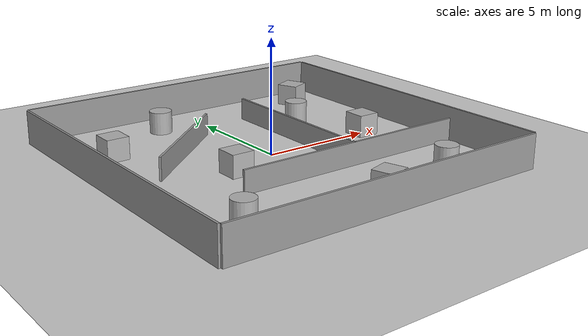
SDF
<sdf version="1.10">
 <world name="maze_world">
  <gravity>0 0 -9.8000000000000007</gravity>
  <magnetic_field>5.5644999999999998e-06 2.2875799999999999e-05 -4.2388400000000002e-05</magnetic_field>
  <atmosphere type="adiabatic"/>
  <physics type="ode">
   <max_step_size>0.001</max_step_size>
   <real_time_factor>1</real_time_factor>
   <real_time_update_rate>1000</real_time_update_rate>
  </physics>
  <scene>
   <ambient>0.400000006 0.400000006 0.400000006 1</ambient>
   <background>0.699999988 0.699999988 0.699999988 1</background>
   <shadows>true</shadows>
  </scene>
  <model name="ground_plane">
   <static>true</static>
   <link name="link">
    <collision name="collision">
     <geometry><plane><normal>0 0 1</normal><size>1 1</size></plane></geometry>
    </collision>
    <visual name="visual">
     <geometry><plane><normal>0 0 1</normal><size>100 100</size></plane></geometry>
     <material>
      <ambient>0.800000012 0.800000012 0.800000012 1</ambient>
      <diffuse>0.800000012 0.800000012 0.800000012 1</diffuse>
      <specular>0.800000012 0.800000012 0.800000012 1</specular>
     </material>
    </visual>
    <inertial>
     <mass>1</mass>
     <inertia><ixx>1</ixx><ixy>0</ixy><ixz>0</ixz><iyy>1</iyy><iyz>0</iyz><izz>1</izz></inertia>
    </inertial>
   </link>
  </model>
  <model name="border_wall">
   <static>1</static>
   <link name="link">
    <collision name="collision1">
     <pose>0 7.55 0.5 0 0 0</pose>
     <geometry><box><size>15 0.1 2</size></box></geometry>
    </collision>
    <visual name="visual1">
     <pose>0 7.55 0.5 0 0 0</pose>
     <geometry><box><size>15 0.1 2</size></box></geometry>
     <material>
      <script><name>Gazebo/Grey</name><uri>file://media/materials/scripts/gazebo.material</uri></script>
     </material>
    </visual>
    <collision name="collision2">
     <pose>0 -7.55 0.5 0 0 0</pose>
     <geometry><box><size>15 0.1 2</size></box></geometry>
    </collision>
    <visual name="visual2">
     <pose>0 -7.55 0.5 0 0 0</pose>
     <geometry><box><size>15 0.1 2</size></box></geometry>
     <material>
      <script><name>Gazebo/Grey</name><uri>file://media/materials/scripts/gazebo.material</uri></script>
     </material>
    </visual>
    <collision name="collision3">
     <pose>7.55 0 0.5 0 0 0</pose>
     <geometry><box><size>0.1 15 2</size></box></geometry>
    </collision>
    <visual name="visual3">
     <pose>7.55 0 0.5 0 0 0</pose>
     <geometry><box><size>0.1 15 2</size></box></geometry>
     <material>
      <script><name>Gazebo/Grey</name><uri>file://media/materials/scripts/gazebo.material</uri></script>
     </material>
    </visual>
    <collision name="collision4">
     <pose>-7.55 0 0.5 0 0 0</pose>
     <geometry><box><size>0.1 15 2</size></box></geometry>
    </collision>
    <visual name="visual4">
     <pose>-7.55 0 0.5 0 0 0</pose>
     <geometry><box><size>0.1 15 2</size></box></geometry>
     <material>
      <script><name>Gazebo/Grey</name><uri>file://media/materials/scripts/gazebo.material</uri></script>
     </material>
    </visual>
   </link>
  </model>
  <model name="interior_walls">
   <static>1</static>
   <link name="link">
    <collision name="collision1">
     <pose>2 -3 0.5 0 0 0</pose>
     <geometry><box><size>11 0.1 1</size></box></geometry>
    </collision>
    <visual name="visual1">
     <pose>2 -3 0.5 0 0 0</pose>
     <geometry><box><size>11 0.1 1</size></box></geometry>
     <material>
      <script><name>Gazebo/Grey</name><uri>file://media/materials/scripts/gazebo.material</uri></script>
     </material>
    </visual>
    <collision name="collision2">
     <pose>2 1 0.5 0 0 0</pose>
     <geometry><box><size>0.1 8 1</size></box></geometry>
    </collision>
    <visual name="visual2">
     <pose>2 1 0.5 0 0 0</pose>
     <geometry><box><size>0.1 8 1</size></box></geometry>
     <material>
      <script><name>Gazebo/Grey</name><uri>file://media/materials/scripts/gazebo.material</uri></script>
     </material>
    </visual>
    <collision name="collision3">
     <pose>-3 2 0.5 0 0 0.7</pose>
     <geometry><box><size>6 0.1 1</size></box></geometry>
    </collision>
    <visual name="visual3">
     <pose>-3 2 0.5 0 0 0.7</pose>
     <geometry><box><size>6 0.1 1</size></box></geometry>
     <material>
      <script><name>Gazebo/Grey</name><uri>file://media/materials/scripts/gazebo.material</uri></script>
     </material>
    </visual>
   </link>
  </model>
  <model name="cylinder">
   <static>true</static>
   <pose>4.7590599060058594 -5.4128074645996094 0.5 0 0 0</pose>
   <link name="cylinder_link">
    <inertial>
     <inertia>
      <ixx>0.14580000000000001</ixx>
      <ixy>0</ixy>
      <ixz>0</ixz>
      <iyy>0.14580000000000001</iyy>
      <iyz>0</iyz>
      <izz>0.125</izz>
     </inertia>
     <mass>1</mass>
    </inertial>
    <collision name="cylinder_collision">
     <geometry><cylinder><radius>0.5</radius><length>1</length></cylinder></geometry>
    </collision>
    <visual name="cylinder_visual">
     <geometry><cylinder><radius>0.5</radius><length>1</length></cylinder></geometry>
     <material>
      <ambient>0.300000012 0.300000012 0.300000012 1</ambient>
      <diffuse>0.699999988 0.699999988 0.699999988 1</diffuse>
      <specular>1 1 1 1</specular>
     </material>
    </visual>
   </link>
  </model>
  <model name="box">
   <static>true</static>
   <pose>0.93092799186706543 -6.1110000610351562 0.5 0 0 0.29363059574826006</pose>
   <link name="box_link">
    <inertial>
     <inertia><ixx>0.16666</ixx><ixy>0</ixy><ixz>0</ixz><iyy>0.16666</iyy><iyz>0</iyz><izz>0.16666</izz></inertia>
     <mass>1</mass>
    </inertial>
    <collision name="box_collision"><geometry><box><size>1 1 1</size></box></geometry></collision>
    <visual name="box_visual">
     <geometry><box><size>1 1 1</size></box></geometry>
     <material>
      <ambient>0.300000012 0.300000012 0.300000012 1</ambient>
      <diffuse>0.699999988 0.699999988 0.699999988 1</diffuse>
      <specular>1 1 1 1</specular>
     </material>
    </visual>
   </link>
  </model>
  <model name="cylinder_0">
   <static>true</static>
   <pose>-5.0301995277404785 -5.2000799179077148 0.5 0 0 0</pose>
   <link name="cylinder_link">
    <inertial>
     <inertia>
      <ixx>0.14580000000000001</ixx>
      <ixy>0</ixy>
      <ixz>0</ixz>
      <iyy>0.14580000000000001</iyy>
      <iyz>0</iyz>
      <izz>0.125</izz>
     </inertia>
     <mass>1</mass>
    </inertial>
    <collision name="cylinder_collision">
     <geometry><cylinder><radius>0.5</radius><length>1</length></cylinder></geometry>
    </collision>
    <visual name="cylinder_visual">
     <geometry><cylinder><radius>0.5</radius><length>1</length></cylinder></geometry>
     <material>
      <ambient>0.300000012 0.300000012 0.300000012 1</ambient>
      <diffuse>0.699999988 0.699999988 0.699999988 1</diffuse>
      <specular>1 1 1 1</specular>
     </material>
    </visual>
   </link>
  </model>
  <model name="box_0">
   <static>true</static>
   <pose>5.0419878959655762 -0.016154000535607338 0.5 0 0 0</pose>
   <link name="box_link">
    <inertial>
     <inertia><ixx>0.16666</ixx><ixy>0</ixy><ixz>0</ixz><iyy>0.16666</iyy><iyz>0</iyz><izz>0.16666</izz></inertia>
     <mass>1</mass>
    </inertial>
    <collision name="box_collision"><geometry><box><size>1 1 1</size></box></geometry></collision>
    <visual name="box_visual">
     <geometry><box><size>1 1 1</size></box></geometry>
     <material>
      <ambient>0.300000012 0.300000012 0.300000012 1</ambient>
      <diffuse>0.699999988 0.699999988 0.699999988 1</diffuse>
      <specular>1 1 1 1</specular>
     </material>
    </visual>
   </link>
  </model>
  <model name="cylinder_1">
   <static>true</static>
   <pose>-2.1251769065856934 5.5399799346923828 0.5 0 0 0</pose>
   <link name="cylinder_link">
    <inertial>
     <inertia>
      <ixx>0.14580000000000001</ixx>
      <ixy>0</ixy>
      <ixz>0</ixz>
      <iyy>0.14580000000000001</iyy>
      <iyz>0</iyz>
      <izz>0.125</izz>
     </inertia>
     <mass>1</mass>
    </inertial>
    <collision name="cylinder_collision">
     <geometry><cylinder><radius>0.5</radius><length>1</length></cylinder></geometry>
    </collision>
    <visual name="cylinder_visual">
     <geometry><cylinder><radius>0.5</radius><length>1</length></cylinder></geometry>
     <material>
      <ambient>0.300000012 0.300000012 0.300000012 1</ambient>
      <diffuse>0.699999988 0.699999988 0.699999988 1</diffuse>
      <specular>1 1 1 1</specular>
     </material>
    </visual>
   </link>
  </model>
  <model name="cylinder_2">
   <static>true</static>
   <pose>3.7804300785064697 3.1779634952545166 0.5 0 0 0</pose>
   <link name="cylinder_link">
    <inertial>
     <inertia>
      <ixx>0.14580000000000001</ixx>
      <ixy>0</ixy>
      <ixz>0</ixz>
      <iyy>0.14580000000000001</iyy>
      <iyz>0</iyz>
      <izz>0.125</izz>
     </inertia>
     <mass>1</mass>
    </inertial>
    <collision name="cylinder_collision">
     <geometry><cylinder><radius>0.5</radius><length>1</length></cylinder></geometry>
    </collision>
    <visual name="cylinder_visual">
     <geometry><cylinder><radius>0.5</radius><length>1</length></cylinder></geometry>
     <material>
      <ambient>0.300000012 0.300000012 0.300000012 1</ambient>
      <diffuse>0.699999988 0.699999988 0.699999988 1</diffuse>
      <specular>1 1 1 1</specular>
     </material>
    </visual>
   </link>
  </model>
  <model name="box_1">
   <static>true</static>
   <pose>5.5503201484680176 5.7807598114013672 0.5 0 0 0.40854998752309712</pose>
   <link name="box_link">
    <inertial>
     <inertia><ixx>0.16666</ixx><ixy>0</ixy><ixz>0</ixz><iyy>0.16666</iyy><iyz>0</iyz><izz>0.16666</izz></inertia>
     <mass>1</mass>
    </inertial>
    <collision name="box_collision"><geometry><box><size>1 1 1</size></box></geometry></collision>
    <visual name="box_visual">
     <geometry><box><size>1 1 1</size></box></geometry>
     <material>
      <ambient>0.300000012 0.300000012 0.300000012 1</ambient>
      <diffuse>0.699999988 0.699999988 0.699999988 1</diffuse>
      <specular>1 1 1 1</specular>
     </material>
    </visual>
   </link>
  </model>
  <model name="box_2">
   <pose>-2.4185406887806904 -0.93949500203104797 0.5 0 0 0</pose>
   <link name="box_link">
    <inertial>
     <inertia><ixx>0.16666</ixx><ixy>0</ixy><ixz>0</ixz><iyy>0.16666</iyy><iyz>0</iyz><izz>0.16666</izz></inertia>
     <mass>1</mass>
    </inertial>
    <collision name="box_collision"><geometry><box><size>1 1 1</size></box></geometry></collision>
    <visual name="box_visual">
     <geometry><box><size>1 1 1</size></box></geometry>
     <material>
      <ambient>0.300000012 0.300000012 0.300000012 1</ambient>
      <diffuse>0.699999988 0.699999988 0.699999988 1</diffuse>
      <specular>1 1 1 1</specular>
     </material>
    </visual>
   </link>
   <static>true</static>
  </model>
  <model name="box_3">
   <pose>-5.5300217956505353 3.5554866450492923 0.5 0 0 0</pose>
   <link name="box_link">
    <inertial>
     <inertia><ixx>0.16666</ixx><ixy>0</ixy><ixz>0</ixz><iyy>0.16666</iyy><iyz>0</iyz><izz>0.16666</izz></inertia>
     <mass>1</mass>
    </inertial>
    <collision name="box_collision"><geometry><box><size>1 1 1</size></box></geometry></collision>
    <visual name="box_visual">
     <geometry><box><size>1 1 1</size></box></geometry>
     <material>
      <ambient>0.300000012 0.300000012 0.300000012 1</ambient>
      <diffuse>0.699999988 0.699999988 0.699999988 1</diffuse>
      <specular>1 1 1 1</specular>
     </material>
    </visual>
   </link>
   <static>true</static>
  </model>
  <light name="sun" type="directional">
   <pose>0 0 10 0 0 0</pose>
   <intensity>1</intensity>
   <direction>-0.5 0.10000000000000001 -0.90000000000000002</direction>
   <diffuse>0.800000012 0.800000012 0.800000012 1</diffuse>
   <specular>0.200000003 0.200000003 0.200000003 1</specular>
   <attenuation>
    <range>1000</range>
    <linear>0.01</linear>
    <constant>0.90000000000000002</constant>
    <quadratic>0.001</quadratic>
   </attenuation>
   <spot><inner_angle>0</inner_angle><outer_angle>0</outer_angle><falloff>0</falloff></spot>
  </light>
 </world>
</sdf>
